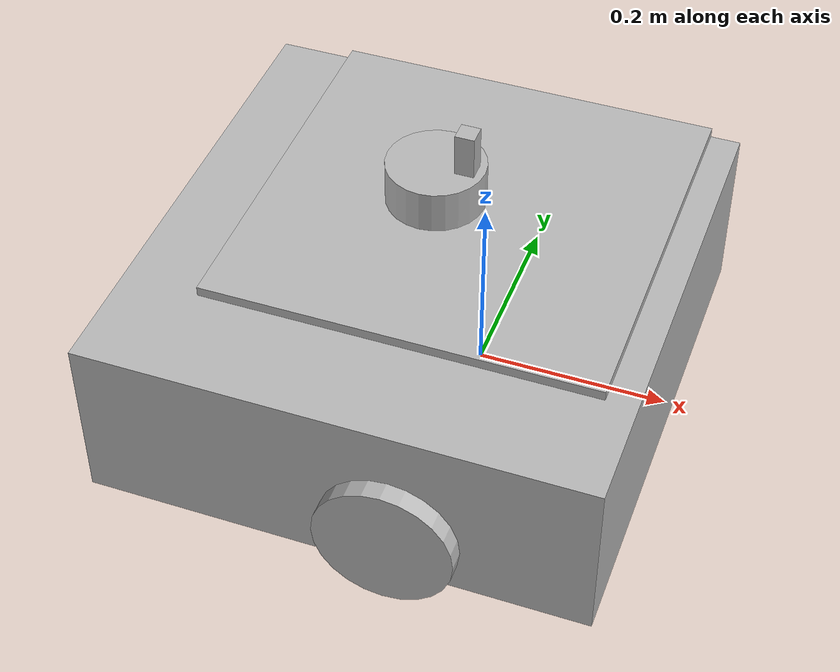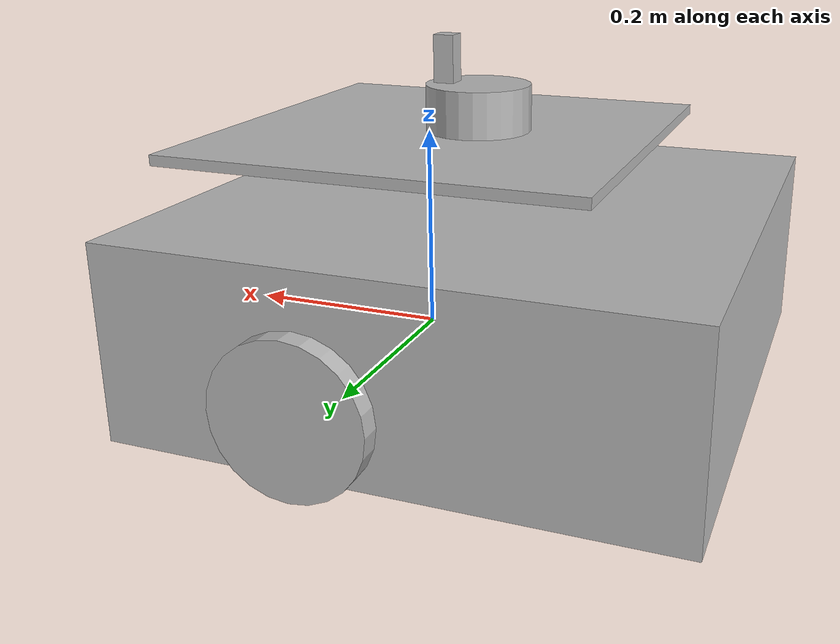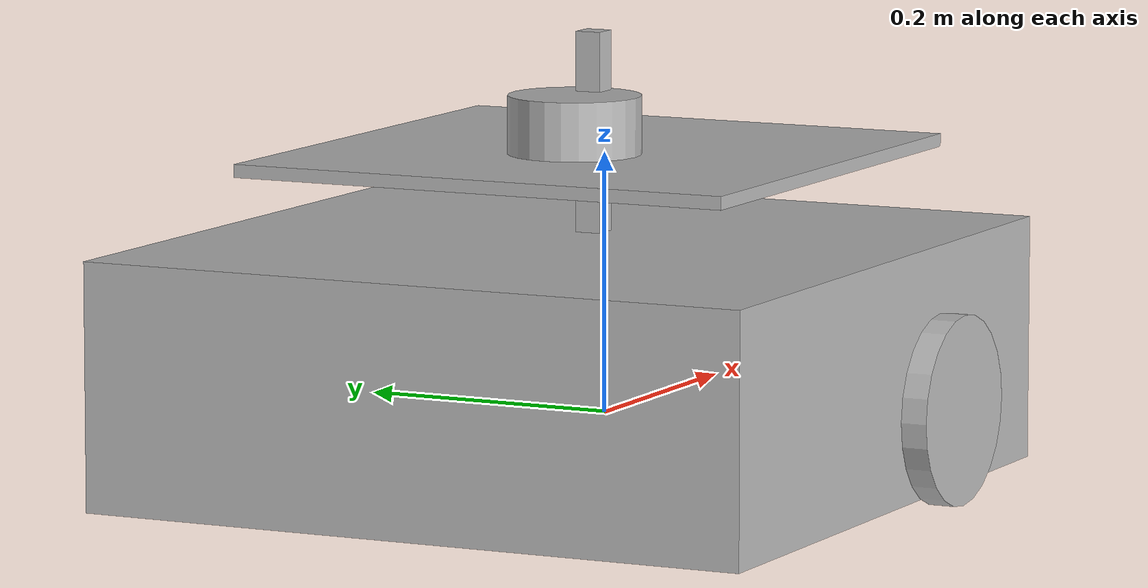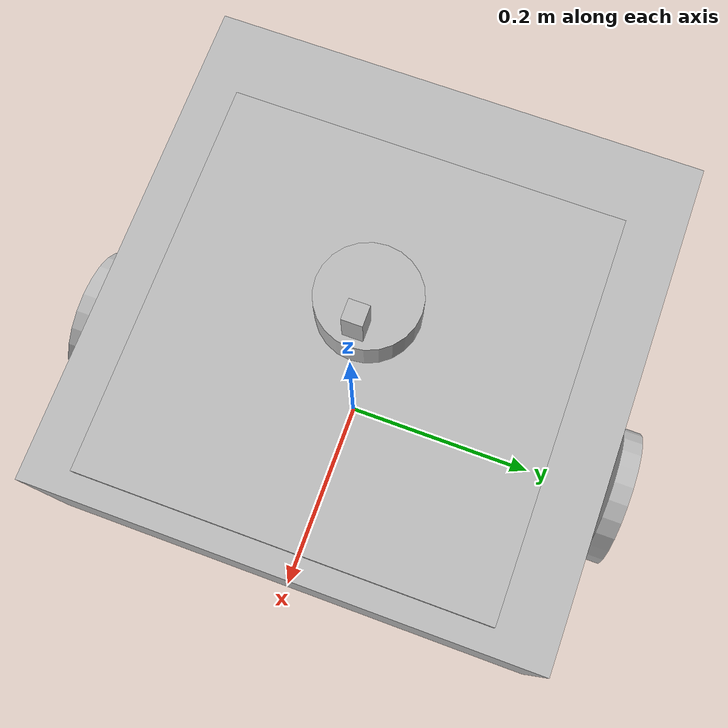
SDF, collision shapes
<?xml version="1.0" ?>
<sdf version="1.5">
  <model name="amazon_robot2">
    <pose>0.0 0.0 0.0 0.0 0.0 0.0</pose>
      <link name="base_footprint"/>
      <link name="base_link">
      <inertial>
        <pose>-0.064 0 0.048 0 0 0</pose>
         <inertia>
            <ixx>0.001</ixx>
            <ixy>0.000</ixy>
            <ixz>0.000</ixz>
            <iyy>0.001</iyy>
            <iyz>0.000</iyz>
            <izz>0.001</izz>
          </inertia>
          <mass>1.0</mass>
      </inertial>

        <collision name="base_collision">
          <pose>-0.064 0 0.048 0 0 0</pose>
          <geometry>
            <box>
              <size>0.532 0.532 0.188</size>
            </box>
          </geometry>
        </collision>

        <visual name="base_visual">
          <pose>-0.064 0 0 0 0 0</pose>
          <geometry>
            <mesh>
              <uri>model://amazon_robot2/meshes/waffle_pi_base.dae</uri>
              <scale>0.002 0.002 0.002</scale>
            </mesh>
          </geometry>
        </visual>
      </link>

      <link name="imu_link">
        <sensor name="amazon_robot_imu" type="imu">
          <always_on>true</always_on>
          <update_rate>200</update_rate>
          <imu>
            <angular_velocity>
              <x>
                <noise type="gaussian">
                  <mean>0.0</mean>
                  <stddev>2e-4</stddev>
                </noise>
              </x>
              <y>
                <noise type="gaussian">
                  <mean>0.0</mean>
                  <stddev>2e-4</stddev>
                </noise>
              </y>
              <z>
                <noise type="gaussian">
                  <mean>0.0</mean>
                  <stddev>2e-4</stddev>
                </noise>
              </z>
            </angular_velocity>
            <linear_acceleration>
              <x>
                <noise type="gaussian">
                  <mean>0.0</mean>
                  <stddev>1.7e-2</stddev>
                </noise>
              </x>
              <y>
                <noise type="gaussian">
                  <mean>0.0</mean>
                  <stddev>1.7e-2</stddev>
                </noise>
              </y>
              <z>
                <noise type="gaussian">
                  <mean>0.0</mean>
                  <stddev>1.7e-2</stddev>
                </noise>
              </z>
            </linear_acceleration>
          </imu>
          <plugin name="amazon_robot_imu" filename="libgazebo_ros_imu_sensor.so">
            <ros>
              <remapping>~/out:=imu</remapping>
            </ros>
          </plugin>
        </sensor>
      </link>

      <link name="base_scan">
        <inertial>
          <pose>-0.052 0 0.222 0 0 0</pose>
          <inertia>
            <ixx>0.001</ixx>
            <ixy>0.000</ixy>
            <ixz>0.000</ixz>
            <iyy>0.001</iyy>
            <iyz>0.000</iyz>
            <izz>0.001</izz>
          </inertia>
          <mass>0.125</mass>
        </inertial>

        <collision name="lidar_sensor_collision">
          <pose>-0.052 0 0.222 0 0 0</pose>
          <geometry>
            <cylinder>
              <radius>0.0508</radius>
              <length>0.055</length>
            </cylinder>
          </geometry>
        </collision>

        <visual name="lidar_sensor_visual">
          <pose>-0.064 0 0.242 0 0 0</pose>
          <geometry>
            <mesh>
              <uri>model://amazon_robot2/meshes/lds.dae</uri>
              <scale>0.001 0.001 0.001</scale>
            </mesh>
          </geometry>
        </visual>

        <sensor name="hls_lfcd_lds" type="ray">
          <always_on>true</always_on>
          <visualize>true</visualize>
          <pose>-0.064 0 0.242 0 0 0</pose>
          <update_rate>5</update_rate>
          <ray>
            <scan>
              <horizontal>
                <samples>360</samples>
                <resolution>1.000000</resolution>
                <min_angle>0.000000</min_angle>
                <max_angle>6.280000</max_angle>
              </horizontal>
            </scan>
            <range>
              <min>0.120000</min>
              <max>3.5</max>
              <resolution>0.015000</resolution>
            </range>
            <noise>
              <type>gaussian</type>
              <mean>0.0</mean>
              <stddev>0.01</stddev>
            </noise>
          </ray>
          <plugin name="amazon_robot_laserscan" filename="libgazebo_ros_ray_sensor.so">
            <ros>
                <remapping>~/out:=scan</remapping>
            </ros>
            <output_type>sensor_msgs/LaserScan</output_type>
            <frame_name>base_scan</frame_name>
          </plugin>
        </sensor>
      </link>

      <link name="wheel_left_link">

        <inertial>
          <pose>0.0 0.288 0.023 -1.57 0 0</pose>
          <inertia>
            <ixx>0.001</ixx>
            <ixy>0.000</ixy>
            <ixz>0.000</ixz>
            <iyy>0.001</iyy>
            <iyz>0.000</iyz>
            <izz>0.001</izz>
          </inertia>
          <mass>0.1</mass>
        </inertial>

        <collision name="wheel_left_collision">
          <pose>0.0 0.288 0.023 -1.57 0 0</pose>
          <geometry>
            <cylinder>
              <radius>0.072</radius>
              <length>0.020</length>
            </cylinder>
          </geometry>
          <surface>
            <!-- This friction pamareter don't contain reliable data!! -->
            <friction>
              <ode>
                <mu>100000.0</mu>
                <mu2>100000.0</mu2>
                <fdir1>0 0 0</fdir1>
                <slip1>0.0</slip1>
                <slip2>0.0</slip2>
              </ode>
            </friction>
            <contact>
              <ode>
                <soft_cfm>0</soft_cfm>
                <soft_erp>0.2</soft_erp>
                <kp>1e+5</kp>
                <kd>1</kd>
                <max_vel>0.01</max_vel>
                <min_depth>0.001</min_depth>
              </ode>
            </contact>
          </surface>
        </collision>

        <visual name="wheel_left_visual">
          <pose>0.0 0.288 0.023 0 0 0</pose>
          <geometry>
            <mesh>
              <uri>model://amazon_robot2/meshes/left_tire.dae</uri>
              <scale>0.002 0.002 0.002</scale>
            </mesh>
          </geometry>
        </visual>
      </link>

      <link name="wheel_right_link">

        <inertial>
          <pose>0.0 -0.288 0.023 -1.57 0 0</pose>
          <inertia>
            <ixx>0.001</ixx>
            <ixy>0.000</ixy>
            <ixz>0.000</ixz>
            <iyy>0.001</iyy>
            <iyz>0.000</iyz>
            <izz>0.001</izz>
          </inertia>
          <mass>0.1</mass>
        </inertial>

        <collision name="wheel_right_collision">
          <pose>0.0 -0.288 0.023 -1.57 0 0</pose>
          <geometry>
            <cylinder>
              <radius>0.072</radius>
              <length>0.020</length>
            </cylinder>
          </geometry>
          <surface>
            <!-- This friction pamareter don't contain reliable data!! -->
            <friction>
              <ode>
                <mu>100000.0</mu>
                <mu2>100000.0</mu2>
                <fdir1>0 0 0</fdir1>
                <slip1>0.0</slip1>
                <slip2>0.0</slip2>
              </ode>
            </friction>
            <contact>
              <ode>
                <soft_cfm>0</soft_cfm>
                <soft_erp>0.2</soft_erp>
                <kp>1e+5</kp>
                <kd>1</kd>
                <max_vel>0.01</max_vel>
                <min_depth>0.001</min_depth>
              </ode>
            </contact>
          </surface>
        </collision>

        <visual name="wheel_right_visual">
          <pose>0.0 -0.288 0.023 0 0 0</pose>
          <geometry>
            <mesh>
              <uri>model://amazon_robot2/meshes/right_tire.dae</uri>
              <scale>0.002 0.002 0.002</scale>
            </mesh>
          </geometry>
        </visual>
      </link>

      <link name='caster_back_right_link'>
        <pose>-0.268 -0.064 -0.016 0 0 0</pose>
        <inertial>
          <mass>0.001</mass>
          <inertia>
            <ixx>0.00001</ixx>
            <ixy>0.000</ixy>
            <ixz>0.000</ixz>
            <iyy>0.00001</iyy>
            <iyz>0.000</iyz>
            <izz>0.00001</izz>
          </inertia>
        </inertial>
        <collision name='collision'>
          <geometry>
            <sphere>
              <radius>0.005000</radius>
            </sphere>
          </geometry>
          <surface>
            <contact>
              <ode>
                <soft_cfm>0</soft_cfm>
                <soft_erp>0.2</soft_erp>
                <kp>1e+5</kp>
                <kd>1</kd>
                <max_vel>0.01</max_vel>
                <min_depth>0.001</min_depth>
              </ode>
            </contact>
          </surface>
        </collision>
      </link>

      <link name='caster_back_left_link'>
        <pose>-0.268 0.064 -0.016 0 0 0</pose>
        <inertial>
          <mass>0.001</mass>
          <inertia>
            <ixx>0.00001</ixx>
            <ixy>0.000</ixy>
            <ixz>0.000</ixz>
            <iyy>0.00001</iyy>
            <iyz>0.000</iyz>
            <izz>0.00001</izz>
          </inertia>
        </inertial>
        <collision name='collision'>
          <geometry>
            <sphere>
              <radius>0.005000</radius>
            </sphere>
          </geometry>
          <surface>
            <contact>
              <ode>
                <soft_cfm>0</soft_cfm>
                <soft_erp>0.2</soft_erp>
                <kp>1e+5</kp>
                <kd>1</kd>
                <max_vel>0.01</max_vel>
                <min_depth>0.001</min_depth>
              </ode>
            </contact>
          </surface>
        </collision>
      </link>

  <link name="lift_link">
    <visual name="lift_visual">
      <pose>-0.02 0.0 0.20 0 0 0</pose>
        <geometry>
            <box>
              <size>0.40 0.40 0.01</size>
            </box>
        </geometry>
      </visual>
      <inertial>
      <pose>-0.02 0.0 0.20 0 0 0</pose>
        <inertia>
          <ixx>0.001</ixx>
          <ixy>0.000</ixy>
          <ixz>0.000</ixz>
          <iyy>0.001</iyy>
          <iyz>0.000</iyz>
          <izz>0.001</izz>
        </inertia>
        <mass>0.1</mass>
      </inertial>

      <collision name="lift_collision">
        <pose>-0.02 0.0 0.20 0 0 0</pose>
        <geometry>
            <box>
              <size>0.40 0.40 0.01</size>
            </box>
        </geometry>
        <surface>
          <friction>
            <ode>
              <mu>200000.0</mu>
              <mu2>200000.0</mu2>
              <fdir1>0 0 0</fdir1>
              <slip1>0.0</slip1>
              <slip2>0.0</slip2>
            </ode>
          </friction>
          <contact>
            <ode>
              <soft_cfm>0</soft_cfm>
              <soft_erp>0.2</soft_erp>
              <kp>1e+5</kp>
              <kd>1</kd>
              <max_vel>0.01</max_vel>
              <min_depth>0.001</min_depth>
            </ode>
          </contact>
        </surface>
      </collision>
  </link>

  <link name="link_platform_mid">
    <visual name="link_platform_mid_visual">
        <pose>-0.02 0.0 0.17 0 0 0</pose>
        <geometry>
            <box>
              <size>0.02 0.02 0.25</size>
            </box>
        </geometry>
      </visual>
      <inertial>
      <pose>-0.02 0.0 0.17 0 0 0</pose>
        <inertia>
          <ixx>0.001</ixx>
          <ixy>0.000</ixy>
          <ixz>0.000</ixz>
          <iyy>0.001</iyy>
          <iyz>0.000</iyz>
          <izz>0.001</izz>
        </inertia>
        <mass>0.1</mass>
      </inertial>

      <collision name="link_platform_mid_collision">
        <pose>-0.02 0.0 0.17 0 0 0</pose>
        <geometry>
            <box>
              <size>0.02 0.02 0.25</size>
            </box>
        </geometry>
        <surface>
          <friction>
            <ode>
              <mu>200000.0</mu>
              <mu2>200000.0</mu2>
              <fdir1>0 0 0</fdir1>
              <slip1>0.0</slip1>
              <slip2>0.0</slip2>
            </ode>
          </friction>
          <contact>
            <ode>
              <soft_cfm>0</soft_cfm>
              <soft_erp>0.2</soft_erp>
              <kp>1e+5</kp>
              <kd>1</kd>
              <max_vel>0.01</max_vel>
              <min_depth>0.001</min_depth>
            </ode>
          </contact>
        </surface>
      </collision>
  </link>

      <joint name="base_joint" type="fixed">
        <parent>base_footprint</parent>
        <child>base_link</child>
        <pose>0.0 0.0 0.010 0 0 0</pose>
      </joint>

      <joint name="imu_joint" type="fixed">
          <parent>base_link</parent>
          <child>imu_link</child>
          <pose>0.0 0.0 0.010 0 0 0</pose>
      </joint>

      <joint name="wheel_left_joint" type="revolute">
        <parent>base_link</parent>
        <child>wheel_left_link</child>
        <pose>0.0 0.288 0.023 -1.57 0 0</pose>
        <axis>
          <xyz>0 0 1</xyz>
        </axis>
      </joint>

      <joint name="wheel_right_joint" type="revolute">
        <parent>base_link</parent>
        <child>wheel_right_link</child>
        <pose>0.0 -0.228 0.023 -1.57 0 0</pose>
        <axis>
          <xyz>0 0 1</xyz>
        </axis>
      </joint>

      <joint name='caster_back_right_joint' type='ball'>
        <parent>base_link</parent>
        <child>caster_back_right_link</child>

      </joint>

      <joint name='caster_back_left_joint' type='ball'>
        <parent>base_link</parent>
        <child>caster_back_left_link</child>
      </joint>

      <joint name="lidar_joint" type="fixed">
        <parent>base_link</parent>
        <child>base_scan</child>
        <pose>-0.064 0 0.224 0 0 0</pose>
        <axis>
          <xyz>0 0 1</xyz>
        </axis>
      </joint>

      <joint name="platform_joint" type="fixed">
        <parent>base_link</parent>
        <child>link_platform_mid</child>
      </joint>

      <joint name="lift_joint" type="prismatic">
        <parent>link_platform_mid</parent>
        <child>lift_link</child>
        <axis>
          <xyz>0 0 1</xyz>
        </axis>
        <limit effort="0.1" lower="-0.05" upper="0.24" velocity="0.5"/>
      </joint>

      <plugin name="amazon_robot_diff_drive" filename="libgazebo_ros_diff_drive.so">

        <ros>
        </ros>

        <update_rate>30</update_rate>

        <!-- wheels -->
        <left_joint>wheel_left_joint</left_joint>
        <right_joint>wheel_right_joint</right_joint>

        <!-- kinematics -->
        <wheel_separation>0.574</wheel_separation>
        <wheel_diameter>0.144</wheel_diameter>

        <!-- limits -->
        <max_wheel_torque>50</max_wheel_torque>
        <max_wheel_acceleration>4.0</max_wheel_acceleration>

        <command_topic>cmd_vel</command_topic>

        <!-- output -->
        <publish_odom>true</publish_odom>
        <publish_odom_tf>true</publish_odom_tf>
        <publish_wheel_tf>false</publish_wheel_tf>

        <odometry_topic>odom</odometry_topic>
        <odometry_frame>odom</odometry_frame>
        <robot_base_frame>base_footprint</robot_base_frame>

      </plugin>

      <plugin name="amazon_robot_joint_state" filename="libgazebo_ros_joint_state_publisher.so">
        <ros>
            <remapping>~/out:=joint_states</remapping>
        </ros>
        <update_rate>30</update_rate>
        <joint_name>wheel_left_joint</joint_name>
        <joint_name>wheel_right_joint</joint_name>
      </plugin>

    </model>
</sdf>
